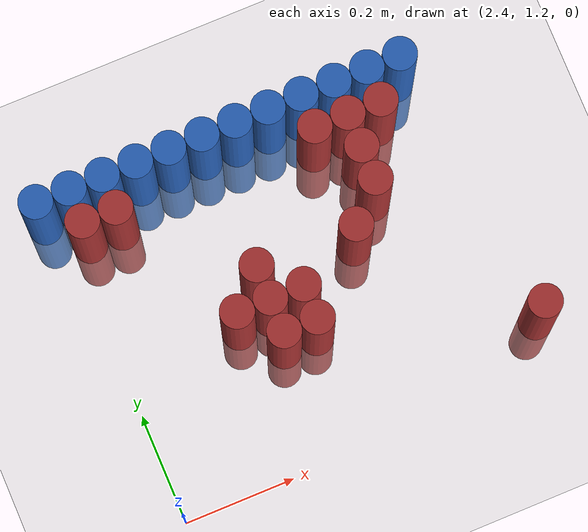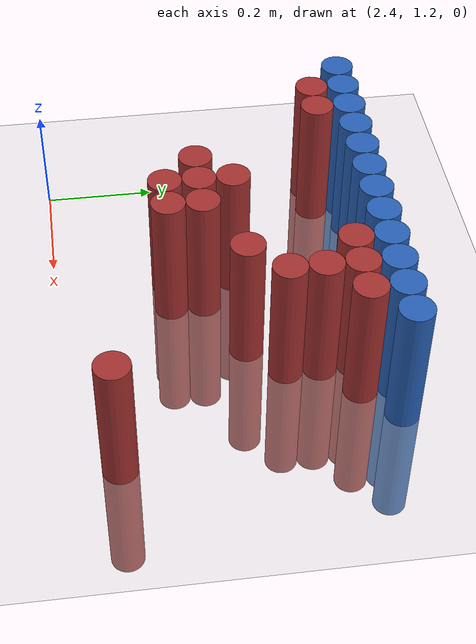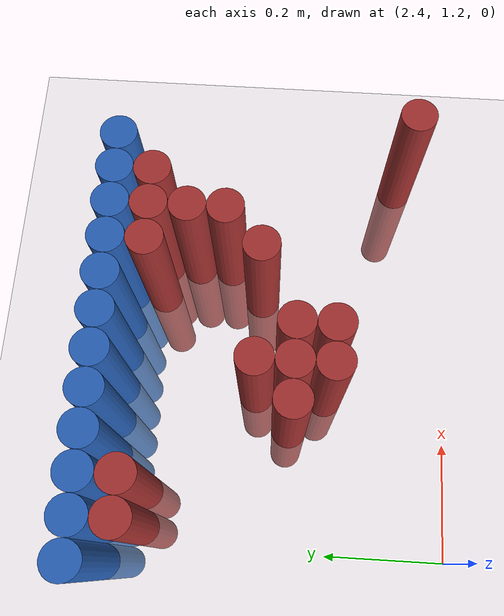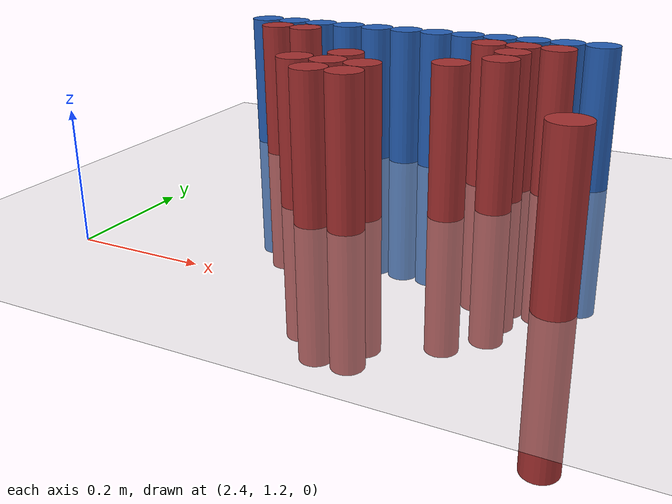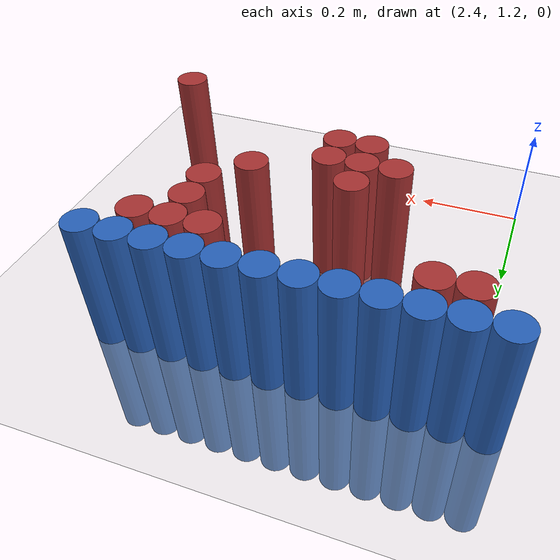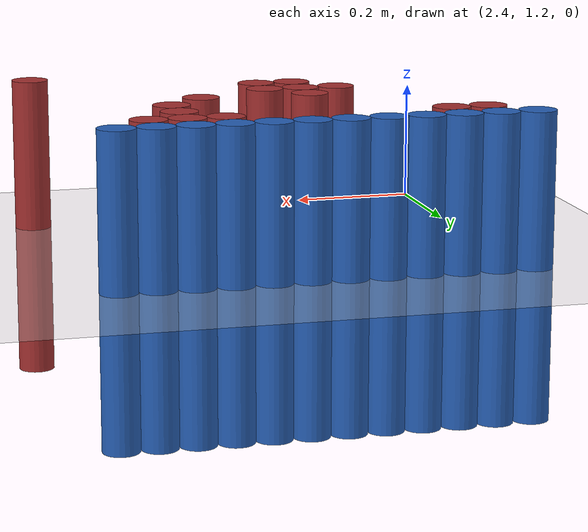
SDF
<sdf version="1.6">
 <world name="default">
  <model name="ground_plane">
   <static>1</static>
   <link name="link">
    <collision name="collision">
     <geometry><plane><normal>0 0 1</normal><size>100 100</size></plane></geometry>
     <surface><friction><ode><mu>100</mu><mu2>50</mu2></ode></friction></surface>
    </collision>
    <visual name="visual">
     <cast_shadows>0</cast_shadows>
     <geometry><plane><normal>0 0 1</normal><size>100 100</size></plane></geometry>
     <material>
      <script><uri>file://media/materials/scripts/gazebo.material</uri><name>Gazebo/Grey</name></script>
     </material>
    </visual>
   </link>
  </model>
  <model name="unit_cylinder_100">
   <static>1</static>
   <pose>2.370000 1.770000 0.000000 0.000000 0.000000 0.000000</pose>
   <link name="link">
    <inertial>
     <mass>1</mass>
     <inertia><ixx>0.145833</ixx><ixy>0</ixy><ixz>0</ixz><iyy>0.145833</iyy><iyz>0</iyz><izz>0.125</izz></inertia>
    </inertial>
    <collision name="collision">
     <geometry><cylinder><radius>0.030000</radius><length>0.5</length></cylinder></geometry>
    </collision>
    <visual name="visual">
     <geometry><cylinder><radius>0.030000</radius><length>0.5</length></cylinder></geometry>
     <material>
      <ambient>0.152000 0.379000 0.720000 1</ambient>
      <diffuse>0.152000 0.379000 0.720000 1</diffuse>
     </material>
     <material>
      <script><name>Gazebo/Grey</name><uri>file://media/materials/scripts/gazebo.material</uri></script>
     </material>
    </visual>
   </link>
  </model>
  <model name="unit_cylinder_101">
   <static>1</static>
   <pose>2.430000 1.770000 0.000000 0.000000 0.000000 0.000000</pose>
   <link name="link">
    <inertial>
     <mass>1</mass>
     <inertia><ixx>0.145833</ixx><ixy>0</ixy><ixz>0</ixz><iyy>0.145833</iyy><iyz>0</iyz><izz>0.125</izz></inertia>
    </inertial>
    <collision name="collision">
     <geometry><cylinder><radius>0.030000</radius><length>0.5</length></cylinder></geometry>
    </collision>
    <visual name="visual">
     <geometry><cylinder><radius>0.030000</radius><length>0.5</length></cylinder></geometry>
     <material>
      <ambient>0.152000 0.379000 0.720000 1</ambient>
      <diffuse>0.152000 0.379000 0.720000 1</diffuse>
     </material>
     <material>
      <script><name>Gazebo/Grey</name><uri>file://media/materials/scripts/gazebo.material</uri></script>
     </material>
    </visual>
   </link>
  </model>
  <model name="unit_cylinder_102">
   <static>1</static>
   <pose>2.490000 1.770000 0.000000 0.000000 0.000000 0.000000</pose>
   <link name="link">
    <inertial>
     <mass>1</mass>
     <inertia><ixx>0.145833</ixx><ixy>0</ixy><ixz>0</ixz><iyy>0.145833</iyy><iyz>0</iyz><izz>0.125</izz></inertia>
    </inertial>
    <collision name="collision">
     <geometry><cylinder><radius>0.030000</radius><length>0.5</length></cylinder></geometry>
    </collision>
    <visual name="visual">
     <geometry><cylinder><radius>0.030000</radius><length>0.5</length></cylinder></geometry>
     <material>
      <ambient>0.152000 0.379000 0.720000 1</ambient>
      <diffuse>0.152000 0.379000 0.720000 1</diffuse>
     </material>
     <material>
      <script><name>Gazebo/Grey</name><uri>file://media/materials/scripts/gazebo.material</uri></script>
     </material>
    </visual>
   </link>
  </model>
  <model name="unit_cylinder_103">
   <static>1</static>
   <pose>2.550000 1.770000 0.000000 0.000000 0.000000 0.000000</pose>
   <link name="link">
    <inertial>
     <mass>1</mass>
     <inertia><ixx>0.145833</ixx><ixy>0</ixy><ixz>0</ixz><iyy>0.145833</iyy><iyz>0</iyz><izz>0.125</izz></inertia>
    </inertial>
    <collision name="collision">
     <geometry><cylinder><radius>0.030000</radius><length>0.5</length></cylinder></geometry>
    </collision>
    <visual name="visual">
     <geometry><cylinder><radius>0.030000</radius><length>0.5</length></cylinder></geometry>
     <material>
      <ambient>0.152000 0.379000 0.720000 1</ambient>
      <diffuse>0.152000 0.379000 0.720000 1</diffuse>
     </material>
     <material>
      <script><name>Gazebo/Grey</name><uri>file://media/materials/scripts/gazebo.material</uri></script>
     </material>
    </visual>
   </link>
  </model>
  <model name="unit_cylinder_104">
   <static>1</static>
   <pose>2.610000 1.770000 0.000000 0.000000 0.000000 0.000000</pose>
   <link name="link">
    <inertial>
     <mass>1</mass>
     <inertia><ixx>0.145833</ixx><ixy>0</ixy><ixz>0</ixz><iyy>0.145833</iyy><iyz>0</iyz><izz>0.125</izz></inertia>
    </inertial>
    <collision name="collision">
     <geometry><cylinder><radius>0.030000</radius><length>0.5</length></cylinder></geometry>
    </collision>
    <visual name="visual">
     <geometry><cylinder><radius>0.030000</radius><length>0.5</length></cylinder></geometry>
     <material>
      <ambient>0.152000 0.379000 0.720000 1</ambient>
      <diffuse>0.152000 0.379000 0.720000 1</diffuse>
     </material>
     <material>
      <script><name>Gazebo/Grey</name><uri>file://media/materials/scripts/gazebo.material</uri></script>
     </material>
    </visual>
   </link>
  </model>
  <model name="unit_cylinder_105">
   <static>1</static>
   <pose>2.670000 1.770000 0.000000 0.000000 0.000000 0.000000</pose>
   <link name="link">
    <inertial>
     <mass>1</mass>
     <inertia><ixx>0.145833</ixx><ixy>0</ixy><ixz>0</ixz><iyy>0.145833</iyy><iyz>0</iyz><izz>0.125</izz></inertia>
    </inertial>
    <collision name="collision">
     <geometry><cylinder><radius>0.030000</radius><length>0.5</length></cylinder></geometry>
    </collision>
    <visual name="visual">
     <geometry><cylinder><radius>0.030000</radius><length>0.5</length></cylinder></geometry>
     <material>
      <ambient>0.152000 0.379000 0.720000 1</ambient>
      <diffuse>0.152000 0.379000 0.720000 1</diffuse>
     </material>
     <material>
      <script><name>Gazebo/Grey</name><uri>file://media/materials/scripts/gazebo.material</uri></script>
     </material>
    </visual>
   </link>
  </model>
  <model name="unit_cylinder_106">
   <static>1</static>
   <pose>2.730000 1.770000 0.000000 0.000000 0.000000 0.000000</pose>
   <link name="link">
    <inertial>
     <mass>1</mass>
     <inertia><ixx>0.145833</ixx><ixy>0</ixy><ixz>0</ixz><iyy>0.145833</iyy><iyz>0</iyz><izz>0.125</izz></inertia>
    </inertial>
    <collision name="collision">
     <geometry><cylinder><radius>0.030000</radius><length>0.5</length></cylinder></geometry>
    </collision>
    <visual name="visual">
     <geometry><cylinder><radius>0.030000</radius><length>0.5</length></cylinder></geometry>
     <material>
      <ambient>0.152000 0.379000 0.720000 1</ambient>
      <diffuse>0.152000 0.379000 0.720000 1</diffuse>
     </material>
     <material>
      <script><name>Gazebo/Grey</name><uri>file://media/materials/scripts/gazebo.material</uri></script>
     </material>
    </visual>
   </link>
  </model>
  <model name="unit_cylinder_107">
   <static>1</static>
   <pose>2.790000 1.770000 0.000000 0.000000 0.000000 0.000000</pose>
   <link name="link">
    <inertial>
     <mass>1</mass>
     <inertia><ixx>0.145833</ixx><ixy>0</ixy><ixz>0</ixz><iyy>0.145833</iyy><iyz>0</iyz><izz>0.125</izz></inertia>
    </inertial>
    <collision name="collision">
     <geometry><cylinder><radius>0.030000</radius><length>0.5</length></cylinder></geometry>
    </collision>
    <visual name="visual">
     <geometry><cylinder><radius>0.030000</radius><length>0.5</length></cylinder></geometry>
     <material>
      <ambient>0.152000 0.379000 0.720000 1</ambient>
      <diffuse>0.152000 0.379000 0.720000 1</diffuse>
     </material>
     <material>
      <script><name>Gazebo/Grey</name><uri>file://media/materials/scripts/gazebo.material</uri></script>
     </material>
    </visual>
   </link>
  </model>
  <model name="unit_cylinder_108">
   <static>1</static>
   <pose>2.850000 1.770000 0.000000 0.000000 0.000000 0.000000</pose>
   <link name="link">
    <inertial>
     <mass>1</mass>
     <inertia><ixx>0.145833</ixx><ixy>0</ixy><ixz>0</ixz><iyy>0.145833</iyy><iyz>0</iyz><izz>0.125</izz></inertia>
    </inertial>
    <collision name="collision">
     <geometry><cylinder><radius>0.030000</radius><length>0.5</length></cylinder></geometry>
    </collision>
    <visual name="visual">
     <geometry><cylinder><radius>0.030000</radius><length>0.5</length></cylinder></geometry>
     <material>
      <ambient>0.152000 0.379000 0.720000 1</ambient>
      <diffuse>0.152000 0.379000 0.720000 1</diffuse>
     </material>
     <material>
      <script><name>Gazebo/Grey</name><uri>file://media/materials/scripts/gazebo.material</uri></script>
     </material>
    </visual>
   </link>
  </model>
  <model name="unit_cylinder_109">
   <static>1</static>
   <pose>2.910000 1.770000 0.000000 0.000000 0.000000 0.000000</pose>
   <link name="link">
    <inertial>
     <mass>1</mass>
     <inertia><ixx>0.145833</ixx><ixy>0</ixy><ixz>0</ixz><iyy>0.145833</iyy><iyz>0</iyz><izz>0.125</izz></inertia>
    </inertial>
    <collision name="collision">
     <geometry><cylinder><radius>0.030000</radius><length>0.5</length></cylinder></geometry>
    </collision>
    <visual name="visual">
     <geometry><cylinder><radius>0.030000</radius><length>0.5</length></cylinder></geometry>
     <material>
      <ambient>0.152000 0.379000 0.720000 1</ambient>
      <diffuse>0.152000 0.379000 0.720000 1</diffuse>
     </material>
     <material>
      <script><name>Gazebo/Grey</name><uri>file://media/materials/scripts/gazebo.material</uri></script>
     </material>
    </visual>
   </link>
  </model>
  <model name="unit_cylinder_110">
   <static>1</static>
   <pose>2.970000 1.770000 0.000000 0.000000 0.000000 0.000000</pose>
   <link name="link">
    <inertial>
     <mass>1</mass>
     <inertia><ixx>0.145833</ixx><ixy>0</ixy><ixz>0</ixz><iyy>0.145833</iyy><iyz>0</iyz><izz>0.125</izz></inertia>
    </inertial>
    <collision name="collision">
     <geometry><cylinder><radius>0.030000</radius><length>0.5</length></cylinder></geometry>
    </collision>
    <visual name="visual">
     <geometry><cylinder><radius>0.030000</radius><length>0.5</length></cylinder></geometry>
     <material>
      <ambient>0.152000 0.379000 0.720000 1</ambient>
      <diffuse>0.152000 0.379000 0.720000 1</diffuse>
     </material>
     <material>
      <script><name>Gazebo/Grey</name><uri>file://media/materials/scripts/gazebo.material</uri></script>
     </material>
    </visual>
   </link>
  </model>
  <model name="unit_cylinder_111">
   <static>1</static>
   <pose>3.030000 1.770000 0.000000 0.000000 0.000000 0.000000</pose>
   <link name="link">
    <inertial>
     <mass>1</mass>
     <inertia><ixx>0.145833</ixx><ixy>0</ixy><ixz>0</ixz><iyy>0.145833</iyy><iyz>0</iyz><izz>0.125</izz></inertia>
    </inertial>
    <collision name="collision">
     <geometry><cylinder><radius>0.030000</radius><length>0.5</length></cylinder></geometry>
    </collision>
    <visual name="visual">
     <geometry><cylinder><radius>0.030000</radius><length>0.5</length></cylinder></geometry>
     <material>
      <ambient>0.152000 0.379000 0.720000 1</ambient>
      <diffuse>0.152000 0.379000 0.720000 1</diffuse>
     </material>
     <material>
      <script><name>Gazebo/Grey</name><uri>file://media/materials/scripts/gazebo.material</uri></script>
     </material>
    </visual>
   </link>
  </model>
  <model name="unit_cylinder_125">
   <static>1</static>
   <pose>2.430000 1.710000 0.000000 0.000000 0.000000 0.000000</pose>
   <link name="link">
    <inertial>
     <mass>1</mass>
     <inertia><ixx>0.145833</ixx><ixy>0</ixy><ixz>0</ixz><iyy>0.145833</iyy><iyz>0</iyz><izz>0.125</izz></inertia>
    </inertial>
    <collision name="collision">
     <geometry><cylinder><radius>0.030000</radius><length>0.5</length></cylinder></geometry>
    </collision>
    <visual name="visual">
     <geometry><cylinder><radius>0.030000</radius><length>0.5</length></cylinder></geometry>
     <material>
      <ambient>0.648000 0.192000 0.192000 1</ambient>
      <diffuse>0.648000 0.192000 0.192000 1</diffuse>
     </material>
     <material>
      <script><name>Gazebo/Grey</name><uri>file://media/materials/scripts/gazebo.material</uri></script>
     </material>
    </visual>
   </link>
  </model>
  <model name="unit_cylinder_126">
   <static>1</static>
   <pose>2.490000 1.710000 0.000000 0.000000 0.000000 0.000000</pose>
   <link name="link">
    <inertial>
     <mass>1</mass>
     <inertia><ixx>0.145833</ixx><ixy>0</ixy><ixz>0</ixz><iyy>0.145833</iyy><iyz>0</iyz><izz>0.125</izz></inertia>
    </inertial>
    <collision name="collision">
     <geometry><cylinder><radius>0.030000</radius><length>0.5</length></cylinder></geometry>
    </collision>
    <visual name="visual">
     <geometry><cylinder><radius>0.030000</radius><length>0.5</length></cylinder></geometry>
     <material>
      <ambient>0.648000 0.192000 0.192000 1</ambient>
      <diffuse>0.648000 0.192000 0.192000 1</diffuse>
     </material>
     <material>
      <script><name>Gazebo/Grey</name><uri>file://media/materials/scripts/gazebo.material</uri></script>
     </material>
    </visual>
   </link>
  </model>
  <model name="unit_cylinder_127">
   <static>1</static>
   <pose>2.850000 1.710000 0.000000 0.000000 0.000000 0.000000</pose>
   <link name="link">
    <inertial>
     <mass>1</mass>
     <inertia><ixx>0.145833</ixx><ixy>0</ixy><ixz>0</ixz><iyy>0.145833</iyy><iyz>0</iyz><izz>0.125</izz></inertia>
    </inertial>
    <collision name="collision">
     <geometry><cylinder><radius>0.030000</radius><length>0.5</length></cylinder></geometry>
    </collision>
    <visual name="visual">
     <geometry><cylinder><radius>0.030000</radius><length>0.5</length></cylinder></geometry>
     <material>
      <ambient>0.648000 0.192000 0.192000 1</ambient>
      <diffuse>0.648000 0.192000 0.192000 1</diffuse>
     </material>
     <material>
      <script><name>Gazebo/Grey</name><uri>file://media/materials/scripts/gazebo.material</uri></script>
     </material>
    </visual>
   </link>
  </model>
  <model name="unit_cylinder_128">
   <static>1</static>
   <pose>2.910000 1.710000 0.000000 0.000000 0.000000 0.000000</pose>
   <link name="link">
    <inertial>
     <mass>1</mass>
     <inertia><ixx>0.145833</ixx><ixy>0</ixy><ixz>0</ixz><iyy>0.145833</iyy><iyz>0</iyz><izz>0.125</izz></inertia>
    </inertial>
    <collision name="collision">
     <geometry><cylinder><radius>0.030000</radius><length>0.5</length></cylinder></geometry>
    </collision>
    <visual name="visual">
     <geometry><cylinder><radius>0.030000</radius><length>0.5</length></cylinder></geometry>
     <material>
      <ambient>0.648000 0.192000 0.192000 1</ambient>
      <diffuse>0.648000 0.192000 0.192000 1</diffuse>
     </material>
     <material>
      <script><name>Gazebo/Grey</name><uri>file://media/materials/scripts/gazebo.material</uri></script>
     </material>
    </visual>
   </link>
  </model>
  <model name="unit_cylinder_129">
   <static>1</static>
   <pose>2.970000 1.710000 0.000000 0.000000 0.000000 0.000000</pose>
   <link name="link">
    <inertial>
     <mass>1</mass>
     <inertia><ixx>0.145833</ixx><ixy>0</ixy><ixz>0</ixz><iyy>0.145833</iyy><iyz>0</iyz><izz>0.125</izz></inertia>
    </inertial>
    <collision name="collision">
     <geometry><cylinder><radius>0.030000</radius><length>0.5</length></cylinder></geometry>
    </collision>
    <visual name="visual">
     <geometry><cylinder><radius>0.030000</radius><length>0.5</length></cylinder></geometry>
     <material>
      <ambient>0.648000 0.192000 0.192000 1</ambient>
      <diffuse>0.648000 0.192000 0.192000 1</diffuse>
     </material>
     <material>
      <script><name>Gazebo/Grey</name><uri>file://media/materials/scripts/gazebo.material</uri></script>
     </material>
    </visual>
   </link>
  </model>
  <model name="unit_cylinder_132">
   <static>1</static>
   <pose>2.910000 1.650000 0.000000 0.000000 0.000000 0.000000</pose>
   <link name="link">
    <inertial>
     <mass>1</mass>
     <inertia><ixx>0.145833</ixx><ixy>0</ixy><ixz>0</ixz><iyy>0.145833</iyy><iyz>0</iyz><izz>0.125</izz></inertia>
    </inertial>
    <collision name="collision">
     <geometry><cylinder><radius>0.030000</radius><length>0.5</length></cylinder></geometry>
    </collision>
    <visual name="visual">
     <geometry><cylinder><radius>0.030000</radius><length>0.5</length></cylinder></geometry>
     <material>
      <ambient>0.648000 0.192000 0.192000 1</ambient>
      <diffuse>0.648000 0.192000 0.192000 1</diffuse>
     </material>
     <material>
      <script><name>Gazebo/Grey</name><uri>file://media/materials/scripts/gazebo.material</uri></script>
     </material>
    </visual>
   </link>
  </model>
  <model name="unit_cylinder_133">
   <static>1</static>
   <pose>2.910000 1.590000 0.000000 0.000000 0.000000 0.000000</pose>
   <link name="link">
    <inertial>
     <mass>1</mass>
     <inertia><ixx>0.145833</ixx><ixy>0</ixy><ixz>0</ixz><iyy>0.145833</iyy><iyz>0</iyz><izz>0.125</izz></inertia>
    </inertial>
    <collision name="collision">
     <geometry><cylinder><radius>0.030000</radius><length>0.5</length></cylinder></geometry>
    </collision>
    <visual name="visual">
     <geometry><cylinder><radius>0.030000</radius><length>0.5</length></cylinder></geometry>
     <material>
      <ambient>0.648000 0.192000 0.192000 1</ambient>
      <diffuse>0.648000 0.192000 0.192000 1</diffuse>
     </material>
     <material>
      <script><name>Gazebo/Grey</name><uri>file://media/materials/scripts/gazebo.material</uri></script>
     </material>
    </visual>
   </link>
  </model>
  <model name="unit_cylinder_134">
   <static>1</static>
   <pose>2.670000 1.530000 0.000000 0.000000 0.000000 0.000000</pose>
   <link name="link">
    <inertial>
     <mass>1</mass>
     <inertia><ixx>0.145833</ixx><ixy>0</ixy><ixz>0</ixz><iyy>0.145833</iyy><iyz>0</iyz><izz>0.125</izz></inertia>
    </inertial>
    <collision name="collision">
     <geometry><cylinder><radius>0.030000</radius><length>0.5</length></cylinder></geometry>
    </collision>
    <visual name="visual">
     <geometry><cylinder><radius>0.030000</radius><length>0.5</length></cylinder></geometry>
     <material>
      <ambient>0.648000 0.192000 0.192000 1</ambient>
      <diffuse>0.648000 0.192000 0.192000 1</diffuse>
     </material>
     <material>
      <script><name>Gazebo/Grey</name><uri>file://media/materials/scripts/gazebo.material</uri></script>
     </material>
    </visual>
   </link>
  </model>
  <model name="unit_cylinder_135">
   <static>1</static>
   <pose>2.850000 1.530000 0.000000 0.000000 0.000000 0.000000</pose>
   <link name="link">
    <inertial>
     <mass>1</mass>
     <inertia><ixx>0.145833</ixx><ixy>0</ixy><ixz>0</ixz><iyy>0.145833</iyy><iyz>0</iyz><izz>0.125</izz></inertia>
    </inertial>
    <collision name="collision">
     <geometry><cylinder><radius>0.030000</radius><length>0.5</length></cylinder></geometry>
    </collision>
    <visual name="visual">
     <geometry><cylinder><radius>0.030000</radius><length>0.5</length></cylinder></geometry>
     <material>
      <ambient>0.648000 0.192000 0.192000 1</ambient>
      <diffuse>0.648000 0.192000 0.192000 1</diffuse>
     </material>
     <material>
      <script><name>Gazebo/Grey</name><uri>file://media/materials/scripts/gazebo.material</uri></script>
     </material>
    </visual>
   </link>
  </model>
  <model name="unit_cylinder_136">
   <static>1</static>
   <pose>2.610000 1.470000 0.000000 0.000000 0.000000 0.000000</pose>
   <link name="link">
    <inertial>
     <mass>1</mass>
     <inertia><ixx>0.145833</ixx><ixy>0</ixy><ixz>0</ixz><iyy>0.145833</iyy><iyz>0</iyz><izz>0.125</izz></inertia>
    </inertial>
    <collision name="collision">
     <geometry><cylinder><radius>0.030000</radius><length>0.5</length></cylinder></geometry>
    </collision>
    <visual name="visual">
     <geometry><cylinder><radius>0.030000</radius><length>0.5</length></cylinder></geometry>
     <material>
      <ambient>0.648000 0.192000 0.192000 1</ambient>
      <diffuse>0.648000 0.192000 0.192000 1</diffuse>
     </material>
     <material>
      <script><name>Gazebo/Grey</name><uri>file://media/materials/scripts/gazebo.material</uri></script>
     </material>
    </visual>
   </link>
  </model>
  <model name="unit_cylinder_137">
   <static>1</static>
   <pose>2.670000 1.470000 0.000000 0.000000 0.000000 0.000000</pose>
   <link name="link">
    <inertial>
     <mass>1</mass>
     <inertia><ixx>0.145833</ixx><ixy>0</ixy><ixz>0</ixz><iyy>0.145833</iyy><iyz>0</iyz><izz>0.125</izz></inertia>
    </inertial>
    <collision name="collision">
     <geometry><cylinder><radius>0.030000</radius><length>0.5</length></cylinder></geometry>
    </collision>
    <visual name="visual">
     <geometry><cylinder><radius>0.030000</radius><length>0.5</length></cylinder></geometry>
     <material>
      <ambient>0.648000 0.192000 0.192000 1</ambient>
      <diffuse>0.648000 0.192000 0.192000 1</diffuse>
     </material>
     <material>
      <script><name>Gazebo/Grey</name><uri>file://media/materials/scripts/gazebo.material</uri></script>
     </material>
    </visual>
   </link>
  </model>
  <model name="unit_cylinder_138">
   <static>1</static>
   <pose>2.730000 1.470000 0.000000 0.000000 0.000000 0.000000</pose>
   <link name="link">
    <inertial>
     <mass>1</mass>
     <inertia><ixx>0.145833</ixx><ixy>0</ixy><ixz>0</ixz><iyy>0.145833</iyy><iyz>0</iyz><izz>0.125</izz></inertia>
    </inertial>
    <collision name="collision">
     <geometry><cylinder><radius>0.030000</radius><length>0.5</length></cylinder></geometry>
    </collision>
    <visual name="visual">
     <geometry><cylinder><radius>0.030000</radius><length>0.5</length></cylinder></geometry>
     <material>
      <ambient>0.648000 0.192000 0.192000 1</ambient>
      <diffuse>0.648000 0.192000 0.192000 1</diffuse>
     </material>
     <material>
      <script><name>Gazebo/Grey</name><uri>file://media/materials/scripts/gazebo.material</uri></script>
     </material>
    </visual>
   </link>
  </model>
  <model name="unit_cylinder_139">
   <static>1</static>
   <pose>2.670000 1.410000 0.000000 0.000000 0.000000 0.000000</pose>
   <link name="link">
    <inertial>
     <mass>1</mass>
     <inertia><ixx>0.145833</ixx><ixy>0</ixy><ixz>0</ixz><iyy>0.145833</iyy><iyz>0</iyz><izz>0.125</izz></inertia>
    </inertial>
    <collision name="collision">
     <geometry><cylinder><radius>0.030000</radius><length>0.5</length></cylinder></geometry>
    </collision>
    <visual name="visual">
     <geometry><cylinder><radius>0.030000</radius><length>0.5</length></cylinder></geometry>
     <material>
      <ambient>0.648000 0.192000 0.192000 1</ambient>
      <diffuse>0.648000 0.192000 0.192000 1</diffuse>
     </material>
     <material>
      <script><name>Gazebo/Grey</name><uri>file://media/materials/scripts/gazebo.material</uri></script>
     </material>
    </visual>
   </link>
  </model>
  <model name="unit_cylinder_140">
   <static>1</static>
   <pose>2.730000 1.410000 0.000000 0.000000 0.000000 0.000000</pose>
   <link name="link">
    <inertial>
     <mass>1</mass>
     <inertia><ixx>0.145833</ixx><ixy>0</ixy><ixz>0</ixz><iyy>0.145833</iyy><iyz>0</iyz><izz>0.125</izz></inertia>
    </inertial>
    <collision name="collision">
     <geometry><cylinder><radius>0.030000</radius><length>0.5</length></cylinder></geometry>
    </collision>
    <visual name="visual">
     <geometry><cylinder><radius>0.030000</radius><length>0.5</length></cylinder></geometry>
     <material>
      <ambient>0.648000 0.192000 0.192000 1</ambient>
      <diffuse>0.648000 0.192000 0.192000 1</diffuse>
     </material>
     <material>
      <script><name>Gazebo/Grey</name><uri>file://media/materials/scripts/gazebo.material</uri></script>
     </material>
    </visual>
   </link>
  </model>
  <model name="unit_cylinder_146">
   <static>1</static>
   <pose>3.090000 1.290000 0.000000 0.000000 0.000000 0.000000</pose>
   <link name="link">
    <inertial>
     <mass>1</mass>
     <inertia><ixx>0.145833</ixx><ixy>0</ixy><ixz>0</ixz><iyy>0.145833</iyy><iyz>0</iyz><izz>0.125</izz></inertia>
    </inertial>
    <collision name="collision">
     <geometry><cylinder><radius>0.030000</radius><length>0.5</length></cylinder></geometry>
    </collision>
    <visual name="visual">
     <geometry><cylinder><radius>0.030000</radius><length>0.5</length></cylinder></geometry>
     <material>
      <ambient>0.648000 0.192000 0.192000 1</ambient>
      <diffuse>0.648000 0.192000 0.192000 1</diffuse>
     </material>
     <material>
      <script><name>Gazebo/Grey</name><uri>file://media/materials/scripts/gazebo.material</uri></script>
     </material>
    </visual>
   </link>
  </model>
 </world>
</sdf>
